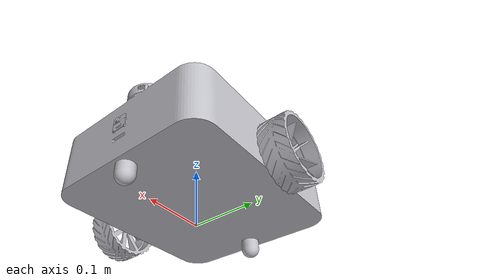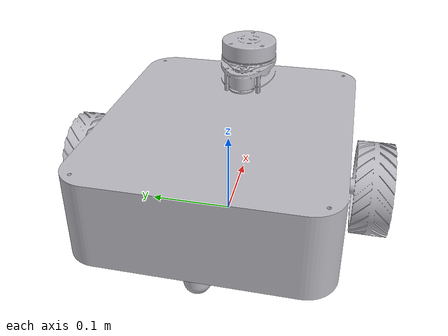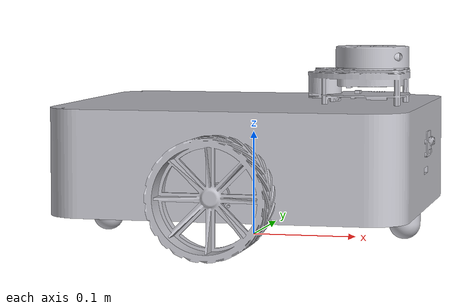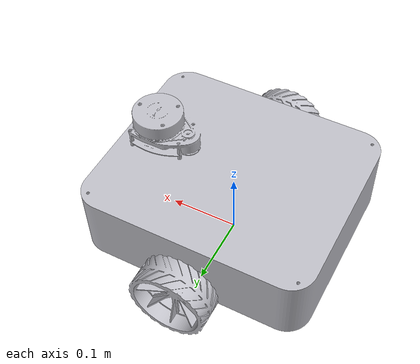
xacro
<?xml version="1.0" ?>
<robot name="bot" xmlns:xacro="http://www.ros.org/wiki/xacro">

<xacro:include filename="$(find bot_description)/urdf/materials.xacro" />
<xacro:include filename="$(find bot_description)/urdf/diffbot.ros2_control.xacro" />
<xacro:diffbot_ros2_control name="RealBot" prefix=""/>
<xacro:include filename="$(find bot_description)/urdf/bot.gazebo" />
<xacro:include filename="$(find bot_description)/urdf/camera.xacro" />
<xacro:include filename="$(find bot_description)/urdf/lidar.xacro" />

<!-- Root link: KDL does not support inertia on root link -->
<link name="base_footprint"/>

<joint name="base_footprint_joint" type="fixed">
  <parent link="base_footprint"/>
  <child link="base_link"/>
  <origin xyz="0 0 0" rpy="0 0 0"/>
</joint>

<link name="base_link">
  <inertial>
    <origin xyz="0.0033109410397353595 -5.22133469861568e-05 0.07955691217854448" rpy="0 0 0"/>
    <mass value="2.042124391834186"/>
    <inertia ixx="0.022549" iyy="0.029976" izz="0.045754" ixy="1e-05" iyz="7e-06" ixz="-0.000498"/>
  </inertial>
  <visual>
    <origin xyz="0 0 0" rpy="0 0 0"/>
    <geometry>
      <mesh filename="file://$(find bot_description)/meshes/base_link.stl" scale="0.001 0.001 0.001"/>
    </geometry>
    <material name="silver"/>
  </visual>
  <collision>
    <origin xyz="0 0 0" rpy="0 0 0"/>
    <geometry>
      <mesh filename="file://$(find bot_description)/meshes/base_link.stl" scale="0.001 0.001 0.001"/>
    </geometry>
  </collision>
</link>

<link name="right_wheel_link_1">
  <inertial>
    <origin xyz="-1.4135269981415094e-10 -0.028050466348318148 1.225355835798858e-06" rpy="0 0 0"/>
    <mass value="0.09525721940487054"/>
    <inertia ixx="0.000118" iyy="0.000211" izz="0.000118" ixy="-0.0" iyz="-0.0" ixz="-0.0"/>
  </inertial>
  <visual>
    <origin xyz="-0.0 0.1425 -0.0546" rpy="0 0 0"/>
    <geometry>
      <mesh filename="file://$(find bot_description)/meshes/right_wheel_link_1.stl" scale="0.001 0.001 0.001"/>
    </geometry>
    <material name="silver"/>
  </visual>
  <collision>
    <origin xyz="0.0 0.0 0.0" rpy="1.5708 0 0"/>
    <geometry>
      <cylinder radius="0.0546" length="0.056"/>
    </geometry>
  </collision>
</link>

<link name="left_wheel_link_1">
  <inertial>
    <origin xyz="1.4973146092150716e-11 0.028050466283458836 -1.2262817377928226e-06" rpy="0 0 0"/>
    <mass value="0.0952572012857347"/>
    <inertia ixx="0.000118" iyy="0.000211" izz="0.000118" ixy="0.0" iyz="-0.0" ixz="0.0"/>
  </inertial>
  <visual>
    <origin xyz="0.0 -0.1425 -0.0546" rpy="0 0 0"/>
    <geometry>
      <mesh filename="file://$(find bot_description)/meshes/left_wheel_link_1.stl" scale="0.001 0.001 0.001"/>
    </geometry>
    <material name="silver"/>
  </visual>
  <collision>
    <origin xyz="0.0 0.0 0.0" rpy="1.5708 0 0"/>
    <geometry>
      <cylinder radius="0.0546" length="0.056"/>
    </geometry>
  </collision>
</link>

<link name="caster_wheel_b_1">
  <inertial>
    <origin xyz="0.01999999999999999 -5.329070518200751e-17 -0.012188268156424566" rpy="0 0 0"/>
    <mass value="0.017408884194903947"/>
    <inertia ixx="2e-06" iyy="2e-06" izz="2e-06" ixy="-0.0" iyz="-0.0" ixz="0.0"/>
  </inertial>
  <visual>
    <origin xyz="0.1675 0.0 -0.0291" rpy="0 0 0"/>
    <geometry>
      <mesh filename="file://$(find bot_description)/meshes/caster_wheel_b_1.stl" scale="0.001 0.001 0.001"/>
    </geometry>
    <material name="silver"/>
  </visual>
  <collision>
    <origin xyz="0.0 0.0 0.0" rpy="0 0 0"/>
    <geometry>
      <sphere radius="0.028"/>
    </geometry>
  </collision>
</link>

<link name="caster_wheel_a_1">
  <inertial>
    <origin xyz="-0.019999999999999934 3.893746217885482e-17 -0.012188268156424563" rpy="0 0 0"/>
    <mass value="0.017408884194903936"/>
    <inertia ixx="2e-06" iyy="2e-06" izz="2e-06" ixy="0.0" iyz="0.0" ixz="-0.0"/>
  </inertial>
  <visual>
    <origin xyz="-0.1675 -0.0 -0.0291" rpy="0 0 0"/>
    <geometry>
      <mesh filename="file://$(find bot_description)/meshes/caster_wheel_a_1.stl" scale="0.001 0.001 0.001"/>
    </geometry>
    <material name="silver"/>
  </visual>
  <collision>
    <origin xyz="0.0 0.0 0.0" rpy="0 0 0"/>
    <geometry>
      <sphere radius="0.028"/>
    </geometry>
  </collision>
</link>

<link name="camera_link_1">
  <inertial>
    <origin xyz="0.0033912758702940027 0.001065651333291926 0.012978229354270815" rpy="0 0 0"/>
    <mass value="0.0011080639299913741"/>
    <inertia ixx="0.0" iyy="0.0" izz="0.0" ixy="-0.0" iyz="0.0" ixz="-0.0"/>
  </inertial>
  <visual>
    <origin xyz="-0.1675 -0.0 -0.0791" rpy="0 0 0"/>
    <geometry>
      <mesh filename="file://$(find bot_description)/meshes/camera_link_1.stl" scale="0.001 0.001 0.001"/>
    </geometry>
    <material name="silver"/>
  </visual>
  <collision>
    <origin xyz="-0.1675 -0.0 -0.0791" rpy="0 0 0"/>
    <geometry>
      <mesh filename="file://$(find bot_description)/meshes/camera_link_1.stl" scale="0.001 0.001 0.001"/>
    </geometry>
  </collision>
</link>

<link name="lidar_link_1">
  <inertial>
    <origin xyz="-0.0006078599059954476 -0.00013002224628911718 0.014307180955489912" rpy="0 0 0"/>
    <mass value="0.0531042514060907"/>
    <inertia ixx="2.4e-05" iyy="2.4e-05" izz="4.4e-05" ixy="0.0" iyz="-0.0" ixz="-0.0"/>
  </inertial>
  <visual>
    <origin xyz="-0.115878 0.002021 -0.164331" rpy="0 0 0"/>
    <geometry>
      <mesh filename="file://$(find bot_description)/meshes/lidar_link_1.stl" scale="0.001 0.001 0.001"/>
    </geometry>
    <material name="silver"/>
  </visual>
  <collision>
    <origin xyz="-0.115878 0.002021 -0.164331" rpy="0 0 0"/>
    <geometry>
      <mesh filename="file://$(find bot_description)/meshes/lidar_link_1.stl" scale="0.001 0.001 0.001"/>
    </geometry>
  </collision>
</link>

<joint name="right_wheel_joint" type="continuous">
  <origin xyz="0.0 -0.1425 0.0546" rpy="0 0 0"/>
  <parent link="base_link"/>
  <child link="right_wheel_link_1"/>
  <axis xyz="0.0 1.0 0.0"/>
</joint>

<joint name="left_wheel_joint" type="continuous">
  <origin xyz="0.0 0.1425 0.0546" rpy="0 0 0"/>
  <parent link="base_link"/>
  <child link="left_wheel_link_1"/>
  <axis xyz="0.0 1.0 0.0"/>
</joint>

<joint name="caster_wheel_b_joint" type="fixed">
  <origin xyz="-0.1675 0.0 0.0291" rpy="0 0 0"/>
  <parent link="base_link"/>
  <child link="caster_wheel_b_1"/>
</joint>

<joint name="caster_wheel_a_joint" type="fixed">
  <origin xyz="0.1675 0.0 0.0291" rpy="0 0 0"/>
  <parent link="base_link"/>
  <child link="caster_wheel_a_1"/>
</joint>

<joint name="camera_joint" type="fixed">
  <origin xyz="0.1675 0.0 0.0791" rpy="0 0 0"/>
  <parent link="base_link"/>
  <child link="camera_link_1"/>
</joint>

<joint name="lidar_joint" type="fixed">
  <origin xyz="0.115878 -0.002021 0.164331" rpy="0 0 0"/>
  <parent link="base_link"/>
  <child link="lidar_link_1"/>
</joint>

</robot>

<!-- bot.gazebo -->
<robot name="bot" xmlns:xacro="http://www.ros.org/wiki/xacro" >

<xacro:property name="body_color" value="Gazebo/Silver" />

<gazebo reference="base_link">
  <material>${body_color}</material>
  <mu1>0.2</mu1>
  <mu2>0.2</mu2>
  <self_collide>false</self_collide>
  <gravity>true</gravity>
</gazebo>

<gazebo reference="right_wheel_link_1">
  <material>${body_color}</material>
  <mu1>100.0</mu1>
  <mu2>100.0</mu2>
  <kp>1e7</kp>
  <kd>1.0</kd>
  <minDepth>0.001</minDepth>
  <self_collide>false</self_collide>
</gazebo>

<gazebo reference="left_wheel_link_1">
  <material>${body_color}</material>
  <mu1>100.0</mu1>
  <mu2>100.0</mu2>
  <kp>1e7</kp>
  <kd>1.0</kd>
  <minDepth>0.001</minDepth>
  <self_collide>false</self_collide>
</gazebo>

<gazebo reference="caster_wheel_b_1">
  <material>${body_color}</material>
  <mu1>0.001</mu1>
  <mu2>0.001</mu2>
  <kp>1e7</kp>
  <kd>1.0</kd>
  <minDepth>0.001</minDepth>
  <self_collide>false</self_collide>
</gazebo>

<gazebo reference="caster_wheel_a_1">
  <material>${body_color}</material>
  <mu1>0.001</mu1>
  <mu2>0.001</mu2>
  <kp>1e7</kp>
  <kd>1.0</kd>
  <minDepth>0.001</minDepth>
  <self_collide>false</self_collide>
</gazebo>

<gazebo reference="camera_link_1">
  <material>${body_color}</material>
  <mu1>0.2</mu1>
  <mu2>0.2</mu2>
  <self_collide>false</self_collide>
</gazebo>

<gazebo reference="lidar_link_1">
  <material>${body_color}</material>
  <mu1>0.2</mu1>
  <mu2>0.2</mu2>
  <self_collide>false</self_collide>
</gazebo>

<gazebo>
  <plugin name="gazebo_ros2_control" filename="libgazebo_ros2_control.so">
    <robot_sim_type>gazebo_ros2_control/GazeboSystem</robot_sim_type>
    <parameters>$(find bot_description)/config/controllers.yaml</parameters>
    <robot_param>robot_description</robot_param>
    <robot_param_node>robot_state_publisher</robot_param_node>
  </plugin>
</gazebo>

</robot>
